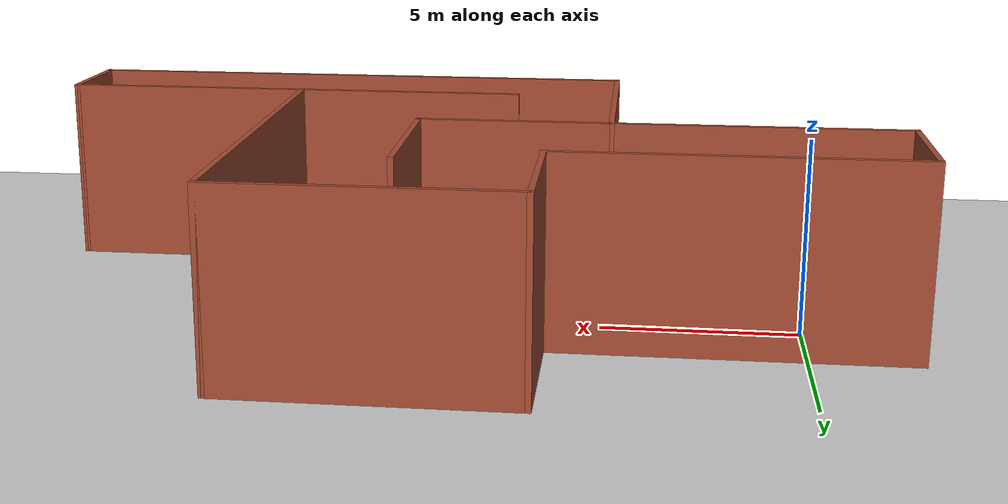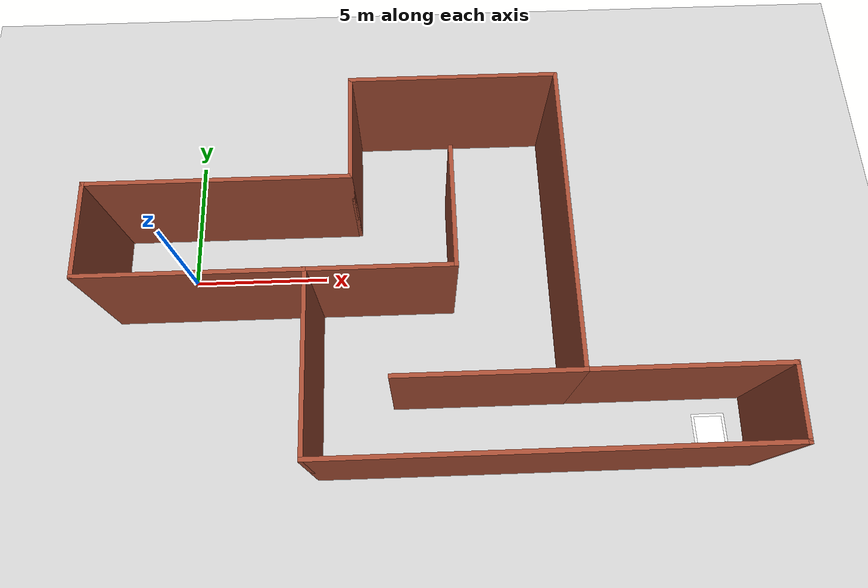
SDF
<?xml version="1.0" ?>
<sdf version="1.5">
  <world name="world_0">
    <!-- A global light source -->
    <include>
      <uri>model://sun</uri>
    </include>
    <!-- A ground plane -->
    <include>
      <uri>model://ground_plane</uri>
    </include>
    <include>
      <uri>model://asphalt_plane</uri>
    </include>
    <!-- ArUco Marker -->
    <include>
      <uri>model://aruco_visual_marker_0</uri>
      <pose>19 -6.34 5.5e-2 0 0 0.0</pose>
    </include>
    <!-- Obstacles -->
    <model name='obstacles'>
      <pose>8.79264 -0.910909 0 0 -0 0</pose>
      <link name='Wall_26'>
        <collision name='Wall_26_Collision'>
          <geometry>
            <box>
              <size>4.5 0.15 5</size>
            </box>
          </geometry>
          <pose>0 0 2.5 0 -0 0</pose>
        </collision>
        <visual name='Wall_26_Visual'>
          <pose>0 0 2.5 0 -0 0</pose>
          <geometry>
            <box>
              <size>4.5 0.15 5</size>
            </box>
          </geometry>
          <material>
            <script>
              <uri>file://media/materials/scripts/gazebo.material</uri>
              <name>Gazebo/Bricks</name>
            </script>
            <ambient>1 1 1 1</ambient>
          </material>
          <meta>
            <layer>0</layer>
          </meta>
        </visual>
        <pose>1.03956 1.62799 0 0 -0 1.5708</pose>
      </link>
      <link name='Wall_36'>
        <collision name='Wall_36_Collision'>
          <geometry>
            <box>
              <size>3.5 0.15 5</size>
            </box>
          </geometry>
          <pose>0 0 2.5 0 -0 0</pose>
        </collision>
        <visual name='Wall_36_Visual'>
          <pose>0 0 2.5 0 -0 0</pose>
          <geometry>
            <box>
              <size>3.5 0.15 5</size>
            </box>
          </geometry>
          <material>
            <script>
              <uri>file://media/materials/scripts/gazebo.material</uri>
              <name>Gazebo/Bricks</name>
            </script>
            <ambient>1 1 1 1</ambient>
          </material>
          <meta>
            <layer>0</layer>
          </meta>
        </visual>
        <pose>-11.5265 1.1265 0 0 -0 1.5708</pose>
      </link>
      <link name='Wall_37'>
        <collision name='Wall_37_Collision'>
          <geometry>
            <box>
              <size>9.25 0.15 5</size>
            </box>
          </geometry>
          <pose>0 0 2.5 0 -0 0</pose>
        </collision>
        <visual name='Wall_37_Visual'>
          <pose>0 0 2.5 0 -0 0</pose>
          <geometry>
            <box>
              <size>9.25 0.15 5</size>
            </box>
          </geometry>
          <material>
            <script>
              <uri>file://media/materials/scripts/gazebo.material</uri>
              <name>Gazebo/Bricks</name>
            </script>
            <ambient>1 1 1 1</ambient>
          </material>
          <meta>
            <layer>0</layer>
          </meta>
        </visual>
        <pose>-6.9765 2.8015 0 0 -0 0</pose>
      </link>
      <link name='Wall_38'>
        <collision name='Wall_38_Collision'>
          <geometry>
            <box>
              <size>4 0.15 5</size>
            </box>
          </geometry>
          <pose>0 0 2.5 0 -0 0</pose>
        </collision>
        <visual name='Wall_38_Visual'>
          <pose>0 0 2.5 0 -0 0</pose>
          <geometry>
            <box>
              <size>4 0.15 5</size>
            </box>
          </geometry>
          <material>
            <script>
              <uri>file://media/materials/scripts/gazebo.material</uri>
              <name>Gazebo/Bricks</name>
            </script>
            <ambient>1 1 1 1</ambient>
          </material>
          <meta>
            <layer>0</layer>
          </meta>
        </visual>
        <pose>-2.4265 4.7265 0 0 -0 1.5708</pose>
      </link>
      <link name='Wall_39'>
        <collision name='Wall_39_Collision'>
          <geometry>
            <box>
              <size>7.5 0.15 5</size>
            </box>
          </geometry>
          <pose>0 0 2.5 0 -0 0</pose>
        </collision>
        <visual name='Wall_39_Visual'>
          <pose>0 0 2.5 0 -0 0</pose>
          <geometry>
            <box>
              <size>7.5 0.15 5</size>
            </box>
          </geometry>
          <material>
            <script>
              <uri>file://media/materials/scripts/gazebo.material</uri>
              <name>Gazebo/Bricks</name>
            </script>
            <ambient>1 1 1 1</ambient>
          </material>
          <meta>
            <layer>0</layer>
          </meta>
        </visual>
        <pose>1.2485 6.6515 0 0 -0 0</pose>
      </link>
      <link name='Wall_40'>
        <collision name='Wall_40_Collision'>
          <geometry>
            <box>
              <size>11 0.15 5</size>
            </box>
          </geometry>
          <pose>0 0 2.5 0 -0 0</pose>
        </collision>
        <visual name='Wall_40_Visual'>
          <pose>0 0 2.5 0 -0 0</pose>
          <geometry>
            <box>
              <size>11 0.15 5</size>
            </box>
          </geometry>
          <material>
            <script>
              <uri>file://media/materials/scripts/gazebo.material</uri>
              <name>Gazebo/Bricks</name>
            </script>
            <ambient>1 1 1 1</ambient>
          </material>
          <meta>
            <layer>0</layer>
          </meta>
        </visual>
        <pose>4.9235 1.2265 0 0 -0 -1.5708</pose>
      </link>
      <link name='Wall_42'>
        <collision name='Wall_42_Collision'>
          <geometry>
            <box>
              <size>5 0.15 5</size>
            </box>
          </geometry>
          <pose>0 0 2.5 0 -0 0</pose>
        </collision>
        <visual name='Wall_42_Visual'>
          <pose>0 0 2.5 0 -0 0</pose>
          <geometry>
            <box>
              <size>5 0.15 5</size>
            </box>
          </geometry>
          <material>
            <script>
              <uri>file://media/materials/scripts/gazebo.material</uri>
              <name>Gazebo/Bricks</name>
            </script>
            <ambient>1 1 1 1</ambient>
          </material>
          <meta>
            <layer>0</layer>
          </meta>
        </visual>
        <pose>-1.38544 -0.547013 0 0 -0 0</pose>
      </link>
      <link name='Wall_44'>
        <collision name='Wall_44_Collision'>
          <geometry>
            <box>
              <size>7.75 0.15 5</size>
            </box>
          </geometry>
          <pose>0 0 2.5 0 -0 0</pose>
        </collision>
        <visual name='Wall_44_Visual'>
          <pose>0 0 2.5 0 -0 0</pose>
          <geometry>
            <box>
              <size>7.75 0.15 5</size>
            </box>
          </geometry>
          <material>
            <script>
              <uri>file://media/materials/scripts/gazebo.material</uri>
              <name>Gazebo/Bricks</name>
            </script>
            <ambient>1 1 1 1</ambient>
          </material>
          <meta>
            <layer>0</layer>
          </meta>
        </visual>
        <pose>-7.7265 -0.548502 0 0 -0 0</pose>
      </link>
      <link name='Wall_45'>
        <collision name='Wall_45_Collision'>
          <geometry>
            <box>
              <size>6.25 0.15 5</size>
            </box>
          </geometry>
          <pose>0 0 2.5 0 -0 0</pose>
        </collision>
        <visual name='Wall_45_Visual'>
          <pose>0 0 2.5 0 -0 0</pose>
          <geometry>
            <box>
              <size>6.25 0.15 5</size>
            </box>
          </geometry>
          <material>
            <script>
              <uri>file://media/materials/scripts/gazebo.material</uri>
              <name>Gazebo/Bricks</name>
            </script>
            <ambient>1 1 1 1</ambient>
          </material>
          <meta>
            <layer>0</layer>
          </meta>
        </visual>
        <pose>-3.9265 -3.5985 0 0 -0 -1.5708</pose>
      </link>
      <link name='Wall_49'>
        <collision name='Wall_49_Collision'>
          <geometry>
            <box>
              <size>15.5 0.15 5</size>
            </box>
          </geometry>
          <pose>0 0 2.5 0 -0 0</pose>
        </collision>
        <visual name='Wall_49_Visual'>
          <pose>0 0 2.5 0 -0 0</pose>
          <geometry>
            <box>
              <size>15.5 0.15 5</size>
            </box>
          </geometry>
          <material>
            <script>
              <uri>file://media/materials/scripts/gazebo.material</uri>
              <name>Gazebo/Bricks</name>
            </script>
            <ambient>1 1 1 1</ambient>
          </material>
          <meta>
            <layer>0</layer>
          </meta>
        </visual>
        <pose>3.7485 -6.6485 0 0 -0 0</pose>
      </link>
      <link name='Wall_52'>
        <collision name='Wall_52_Collision'>
          <geometry>
            <box>
              <size>6.25 0.15 5</size>
            </box>
          </geometry>
          <pose>0 0 2.5 0 -0 0</pose>
        </collision>
        <visual name='Wall_52_Visual'>
          <pose>0 0 2.5 0 -0 0</pose>
          <geometry>
            <box>
              <size>6.25 0.15 5</size>
            </box>
          </geometry>
          <material>
            <script>
              <uri>file://media/materials/scripts/gazebo.material</uri>
              <name>Gazebo/Bricks</name>
            </script>
            <ambient>1 1 1 1</ambient>
          </material>
          <meta>
            <layer>0</layer>
          </meta>
        </visual>
        <pose>1.8735 -4.1985 0 0 -0 3.14159</pose>
      </link>
      <link name='Wall_58'>
        <collision name='Wall_58_Collision'>
          <geometry>
            <box>
              <size>6.75 0.15 5</size>
            </box>
          </geometry>
          <pose>0 0 2.5 0 -0 0</pose>
        </collision>
        <visual name='Wall_58_Visual'>
          <pose>0 0 2.5 0 -0 0</pose>
          <geometry>
            <box>
              <size>6.75 0.15 5</size>
            </box>
          </geometry>
          <material>
            <script>
              <uri>file://media/materials/scripts/gazebo.material</uri>
              <name>Gazebo/Bricks</name>
            </script>
            <ambient>1 1 1 1</ambient>
          </material>
          <meta>
            <layer>0</layer>
          </meta>
        </visual>
        <pose>8.2235 -4.1985 0 0 -0 0</pose>
      </link>
      <link name='Wall_59'>
        <collision name='Wall_59_Collision'>
          <geometry>
            <box>
              <size>2.60204 0.15 5</size>
            </box>
          </geometry>
          <pose>0 0 2.5 0 -0 0</pose>
        </collision>
        <visual name='Wall_59_Visual'>
          <pose>0 0 2.5 0 -0 0</pose>
          <geometry>
            <box>
              <size>2.60204 0.15 5</size>
            </box>
          </geometry>
          <material>
            <script>
              <uri>file://media/materials/scripts/gazebo.material</uri>
              <name>Gazebo/Bricks</name>
            </script>
            <ambient>1 1 1 1</ambient>
          </material>
          <meta>
            <layer>0</layer>
          </meta>
        </visual>
        <pose>11.4735 -5.4235 0 0 -0 -1.61159</pose>
      </link>
      <static>1</static>
    </model>
    <physics name='default_physics' default='0' type='ode'>
      <gravity>0 0 -9.8066</gravity>
      <ode>
        <solver>
          <type>quick</type>
          <iters>10</iters>
          <sor>1.3</sor>
          <use_dynamic_moi_rescaling>0</use_dynamic_moi_rescaling>
        </solver>
        <constraints>
          <cfm>0</cfm>
          <erp>0.2</erp>
          <contact_max_correcting_vel>100</contact_max_correcting_vel>
          <contact_surface_layer>0.001</contact_surface_layer>
        </constraints>
      </ode>
      <max_step_size>0.004</max_step_size>
      <real_time_factor>1</real_time_factor>
      <real_time_update_rate>250</real_time_update_rate>
      <magnetic_field>6.0e-6 2.3e-5 -4.2e-5</magnetic_field>
    </physics>
  </world>
</sdf>

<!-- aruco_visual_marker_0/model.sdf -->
<sdf version='1.5'>
  <model name='aruco_visual_marker_0'>

    <link name='marker'>
      <pose frame=''>0 0 0 0 0 0</pose>
      <visual name='visual'>
        <geometry>
          <box>
            <size>1 1 1e-5</size>
          </box>
        </geometry>
        <material>
          <script>
            <uri>model://aruco_visual_marker_0/materials/scripts</uri>
            <uri>model://aruco_visual_marker_0/materials/textures</uri>
            <name>ArucoVisualMarker0/Marker</name>
          </script>
          <ambient>1 1 1 1</ambient>
          <diffuse>1 1 1 1</diffuse>
          <specular>0 0 0 1</specular>
          <emissive>1 1 1 0</emissive>
          <shader type='vertex'>
            <normal_map>__default__</normal_map>
          </shader>
        </material>
        <pose frame=''>0 0 0 0 -0 0</pose>
        <cast_shadows>1</cast_shadows>
        <transparency>0</transparency>
      </visual>
      <collision name='collision'>
        <laser_retro>0</laser_retro>
        <max_contacts>10</max_contacts>
        <pose frame=''>0 0 0 0 -0 0</pose>
        <geometry>
          <box>
            <size>1 1 1e-05</size>
          </box>
        </geometry>
      </collision>
    </link>

    <link name='marker_pad'>
      <pose frame='marker'>0 0 -1e-3 0 -0 0</pose>
      <visual name='visual'>
        <geometry>
          <box>
            <size>1.2 1.2 1e-5</size>
          </box>
        </geometry>
        <material>
          <lighting>1</lighting>
          <script>
            <uri>file://media/materials/scripts/gazebo.material</uri>
            <name>Gazebo/White</name>
          </script>
          <ambient>0.3 0.3 0.3 1</ambient>
          <diffuse>0.7 0.7 0.7 1</diffuse>
          <specular>0.01 0.01 0.01 1</specular>
          <emissive>1 1 1 0</emissive>
          <shader type='vertex'>
            <normal_map>__default__</normal_map>
          </shader>
        </material>
        <cast_shadows>1</cast_shadows>
        <transparency>0</transparency>
      </visual>
      <collision name='collision'>
        <laser_retro>0</laser_retro>
        <max_contacts>10</max_contacts>
        <pose frame=''>0 0 0 0 -0 0</pose>
        <geometry>
          <box>
            <size>1.2 1.2 1e-5</size>
          </box>
        </geometry>
      </collision>
    </link>

    <joint name='marker_JOINT_marker_pad' type='revolute'>
      <parent>marker</parent>
      <child>marker_pad</child>
      <pose frame=''>0 0 0 0 -0 0</pose>
      <axis>
        <xyz>0 0 0</xyz>
        <limit>
          <upper>0</upper>
          <lower>0</lower>
        </limit>
      </axis>
    </joint>

    <static>1</static>
    <allow_auto_disable>1</allow_auto_disable>

  </model>
</sdf>
